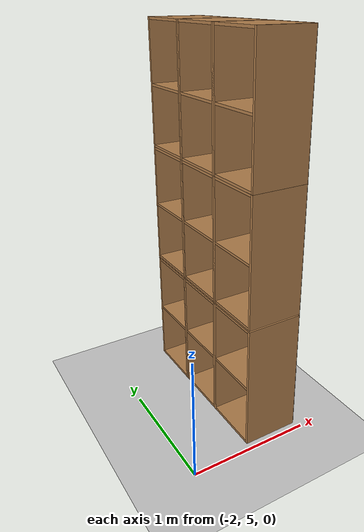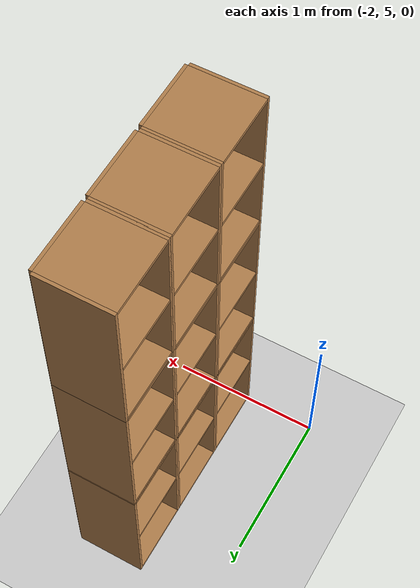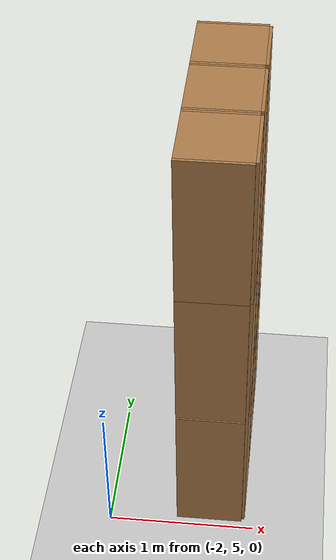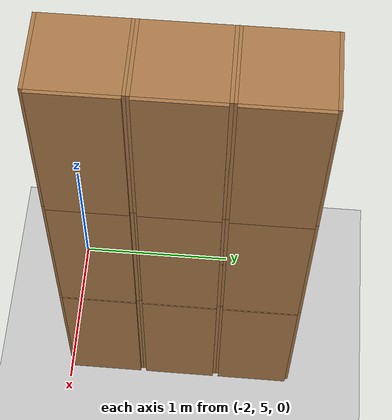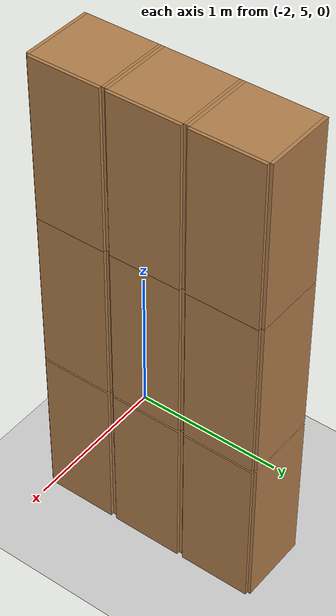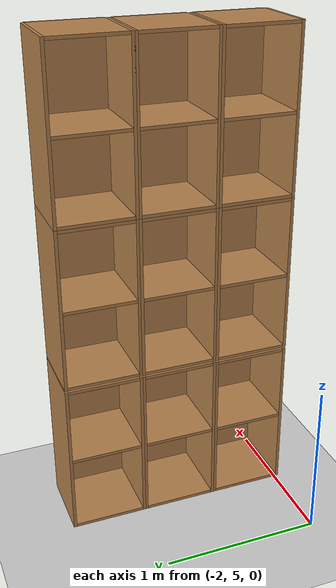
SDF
<sdf version="1.6">
 <world name="default">
  <model name="ground_plane">
   <static>1</static>
   <link name="link">
    <collision name="collision">
     <geometry><plane><normal>0 0 1</normal><size>100 100</size></plane></geometry>
     <surface>
      <contact><collide_bitmask>65535</collide_bitmask></contact>
      <friction><ode><mu>100</mu><mu2>50</mu2></ode></friction>
     </surface>
    </collision>
    <visual name="visual">
     <cast_shadows>0</cast_shadows>
     <geometry><plane><normal>0 0 1</normal><size>100 100</size></plane></geometry>
     <material>
      <script><uri>file://media/materials/scripts/gazebo.material</uri><name>Gazebo/Grey</name></script>
     </material>
    </visual>
   </link>
  </model>
  <model name="Locker18_clone_4_clone_2_clone_2_clone">
   <model name="Locker18">
    <model name="Locker3">
     <model name="cabinet">
      <static>1</static>
      <link name="cabinet_bottom_plate">
       <inertial>
        <pose>0 0 -1 0 -0 0</pose>
        <inertia><ixx>2.05</ixx><ixy>0</ixy><ixz>0</ixz><iyy>2.05</iyy><iyz>0</iyz><izz>2.05</izz></inertia>
        <mass>25</mass>
       </inertial>
       <collision name="cabinet_bottom_plate_geom">
        <pose>0 0 0.01 0 -0 0</pose>
        <geometry><box><size>0.45 0.45 0.02</size></box></geometry>
       </collision>
       <visual name="cabinet_bottom_plate_geom_visual">
        <pose>0 0 0.01 0 -0 0</pose>
        <geometry><box><size>0.45 0.45 0.02</size></box></geometry>
        <material>
         <script><uri>file://media/materials/scripts/gazebo.material</uri><name>Gazebo/Wood</name></script>
        </material>
       </visual>
       <collision name="cabinet_bottom_plate_geom_cabinet_back_plate">
        <pose>0.235 0 0.51 0 -0 0</pose>
        <geometry><box><size>0.02 0.45 1.02</size></box></geometry>
       </collision>
       <visual name="cabinet_bottom_plate_geom_cabinet_back_plate_visual">
        <pose>0.235 0 0.51 0 -0 0</pose>
        <geometry><box><size>0.02 0.45 1.02</size></box></geometry>
        <material>
         <script><uri>file://media/materials/scripts/gazebo.material</uri><name>Gazebo/Wood</name></script>
        </material>
       </visual>
       <collision name="cabinet_bottom_plate_geom_cabinet_left_plate">
        <pose>0 0.235 0.51 0 -0 0</pose>
        <geometry><box><size>0.45 0.02 1.02</size></box></geometry>
       </collision>
       <visual name="cabinet_bottom_plate_geom_cabinet_left_plate_visual">
        <pose>0 0.235 0.51 0 -0 0</pose>
        <geometry><box><size>0.45 0.02 1.02</size></box></geometry>
        <material>
         <script><uri>file://media/materials/scripts/gazebo.material</uri><name>Gazebo/Wood</name></script>
        </material>
       </visual>
       <collision name="cabinet_bottom_plate_geom_cabinet_middle_plate">
        <pose>0 0 0.51 0 -0 0</pose>
        <geometry><box><size>0.45 0.45 0.02</size></box></geometry>
       </collision>
       <visual name="cabinet_bottom_plate_geom_cabinet_middle_plate_visual">
        <pose>0 0 0.51 0 -0 0</pose>
        <geometry><box><size>0.45 0.45 0.02</size></box></geometry>
        <material>
         <script><uri>file://media/materials/scripts/gazebo.material</uri><name>Gazebo/Wood</name></script>
        </material>
       </visual>
       <collision name="cabinet_bottom_plate_geom_cabinet_right_plate">
        <pose>0 -0.235 0.51 0 -0 0</pose>
        <geometry><box><size>0.45 0.02 1.02</size></box></geometry>
       </collision>
       <visual name="cabinet_bottom_plate_geom_cabinet_right_plate_visual">
        <pose>0 -0.235 0.51 0 -0 0</pose>
        <geometry><box><size>0.45 0.02 1.02</size></box></geometry>
        <material>
         <script><uri>file://media/materials/scripts/gazebo.material</uri><name>Gazebo/Wood</name></script>
        </material>
       </visual>
       <collision name="cabinet_bottom_plate_geom_cabinet_top_plate">
        <pose>0 0 1.01 0 -0 0</pose>
        <geometry><box><size>0.45 0.45 0.02</size></box></geometry>
       </collision>
       <visual name="cabinet_bottom_plate_geom_cabinet_top_plate_visual">
        <pose>0 0 1.01 0 -0 0</pose>
        <geometry><box><size>0.45 0.45 0.02</size></box></geometry>
        <material>
         <script><uri>file://media/materials/scripts/gazebo.material</uri><name>Gazebo/Wood</name></script>
        </material>
       </visual>
      </link>
      <pose>-0.676968 1.45758 0 0 -0 0</pose>
     </model>
     <model name="cabinet_clone">
      <static>1</static>
      <link name="cabinet_bottom_plate">
       <inertial>
        <pose>0 0 -1 0 -0 0</pose>
        <inertia><ixx>2.05</ixx><ixy>0</ixy><ixz>0</ixz><iyy>2.05</iyy><iyz>0</iyz><izz>2.05</izz></inertia>
        <mass>25</mass>
       </inertial>
       <collision name="cabinet_bottom_plate_geom">
        <pose>0 0 0.01 0 -0 0</pose>
        <geometry><box><size>0.45 0.45 0.02</size></box></geometry>
       </collision>
       <visual name="cabinet_bottom_plate_geom_visual">
        <pose>0 0 0.01 0 -0 0</pose>
        <geometry><box><size>0.45 0.45 0.02</size></box></geometry>
        <material>
         <script><uri>file://media/materials/scripts/gazebo.material</uri><name>Gazebo/Wood</name></script>
        </material>
       </visual>
       <collision name="cabinet_bottom_plate_geom_cabinet_back_plate">
        <pose>0.235 0 0.51 0 -0 0</pose>
        <geometry><box><size>0.02 0.45 1.02</size></box></geometry>
       </collision>
       <visual name="cabinet_bottom_plate_geom_cabinet_back_plate_visual">
        <pose>0.235 0 0.51 0 -0 0</pose>
        <geometry><box><size>0.02 0.45 1.02</size></box></geometry>
        <material>
         <script><uri>file://media/materials/scripts/gazebo.material</uri><name>Gazebo/Wood</name></script>
        </material>
       </visual>
       <collision name="cabinet_bottom_plate_geom_cabinet_left_plate">
        <pose>0 0.235 0.51 0 -0 0</pose>
        <geometry><box><size>0.45 0.02 1.02</size></box></geometry>
       </collision>
       <visual name="cabinet_bottom_plate_geom_cabinet_left_plate_visual">
        <pose>0 0.235 0.51 0 -0 0</pose>
        <geometry><box><size>0.45 0.02 1.02</size></box></geometry>
        <material>
         <script><uri>file://media/materials/scripts/gazebo.material</uri><name>Gazebo/Wood</name></script>
        </material>
       </visual>
       <collision name="cabinet_bottom_plate_geom_cabinet_middle_plate">
        <pose>0 0 0.51 0 -0 0</pose>
        <geometry><box><size>0.45 0.45 0.02</size></box></geometry>
       </collision>
       <visual name="cabinet_bottom_plate_geom_cabinet_middle_plate_visual">
        <pose>0 0 0.51 0 -0 0</pose>
        <geometry><box><size>0.45 0.45 0.02</size></box></geometry>
        <material>
         <script><uri>file://media/materials/scripts/gazebo.material</uri><name>Gazebo/Wood</name></script>
        </material>
       </visual>
       <collision name="cabinet_bottom_plate_geom_cabinet_right_plate">
        <pose>0 -0.235 0.51 0 -0 0</pose>
        <geometry><box><size>0.45 0.02 1.02</size></box></geometry>
       </collision>
       <visual name="cabinet_bottom_plate_geom_cabinet_right_plate_visual">
        <pose>0 -0.235 0.51 0 -0 0</pose>
        <geometry><box><size>0.45 0.02 1.02</size></box></geometry>
        <material>
         <script><uri>file://media/materials/scripts/gazebo.material</uri><name>Gazebo/Wood</name></script>
        </material>
       </visual>
       <collision name="cabinet_bottom_plate_geom_cabinet_top_plate">
        <pose>0 0 1.01 0 -0 0</pose>
        <geometry><box><size>0.45 0.45 0.02</size></box></geometry>
       </collision>
       <visual name="cabinet_bottom_plate_geom_cabinet_top_plate_visual">
        <pose>0 0 1.01 0 -0 0</pose>
        <geometry><box><size>0.45 0.45 0.02</size></box></geometry>
        <material>
         <script><uri>file://media/materials/scripts/gazebo.material</uri><name>Gazebo/Wood</name></script>
        </material>
       </visual>
      </link>
      <pose>-0.676968 0.970971 0 0 -0 0</pose>
     </model>
     <model name="cabinet_clone_0">
      <static>1</static>
      <link name="cabinet_bottom_plate">
       <inertial>
        <pose>0 0 -1 0 -0 0</pose>
        <inertia><ixx>2.05</ixx><ixy>0</ixy><ixz>0</ixz><iyy>2.05</iyy><iyz>0</iyz><izz>2.05</izz></inertia>
        <mass>25</mass>
       </inertial>
       <collision name="cabinet_bottom_plate_geom">
        <pose>0 0 0.01 0 -0 0</pose>
        <geometry><box><size>0.45 0.45 0.02</size></box></geometry>
       </collision>
       <visual name="cabinet_bottom_plate_geom_visual">
        <pose>0 0 0.01 0 -0 0</pose>
        <geometry><box><size>0.45 0.45 0.02</size></box></geometry>
        <material>
         <script><uri>file://media/materials/scripts/gazebo.material</uri><name>Gazebo/Wood</name></script>
        </material>
       </visual>
       <collision name="cabinet_bottom_plate_geom_cabinet_back_plate">
        <pose>0.235 0 0.51 0 -0 0</pose>
        <geometry><box><size>0.02 0.45 1.02</size></box></geometry>
       </collision>
       <visual name="cabinet_bottom_plate_geom_cabinet_back_plate_visual">
        <pose>0.235 0 0.51 0 -0 0</pose>
        <geometry><box><size>0.02 0.45 1.02</size></box></geometry>
        <material>
         <script><uri>file://media/materials/scripts/gazebo.material</uri><name>Gazebo/Wood</name></script>
        </material>
       </visual>
       <collision name="cabinet_bottom_plate_geom_cabinet_left_plate">
        <pose>0 0.235 0.51 0 -0 0</pose>
        <geometry><box><size>0.45 0.02 1.02</size></box></geometry>
       </collision>
       <visual name="cabinet_bottom_plate_geom_cabinet_left_plate_visual">
        <pose>0 0.235 0.51 0 -0 0</pose>
        <geometry><box><size>0.45 0.02 1.02</size></box></geometry>
        <material>
         <script><uri>file://media/materials/scripts/gazebo.material</uri><name>Gazebo/Wood</name></script>
        </material>
       </visual>
       <collision name="cabinet_bottom_plate_geom_cabinet_middle_plate">
        <pose>0 0 0.51 0 -0 0</pose>
        <geometry><box><size>0.45 0.45 0.02</size></box></geometry>
       </collision>
       <visual name="cabinet_bottom_plate_geom_cabinet_middle_plate_visual">
        <pose>0 0 0.51 0 -0 0</pose>
        <geometry><box><size>0.45 0.45 0.02</size></box></geometry>
        <material>
         <script><uri>file://media/materials/scripts/gazebo.material</uri><name>Gazebo/Wood</name></script>
        </material>
       </visual>
       <collision name="cabinet_bottom_plate_geom_cabinet_right_plate">
        <pose>0 -0.235 0.51 0 -0 0</pose>
        <geometry><box><size>0.45 0.02 1.02</size></box></geometry>
       </collision>
       <visual name="cabinet_bottom_plate_geom_cabinet_right_plate_visual">
        <pose>0 -0.235 0.51 0 -0 0</pose>
        <geometry><box><size>0.45 0.02 1.02</size></box></geometry>
        <material>
         <script><uri>file://media/materials/scripts/gazebo.material</uri><name>Gazebo/Wood</name></script>
        </material>
       </visual>
       <collision name="cabinet_bottom_plate_geom_cabinet_top_plate">
        <pose>0 0 1.01 0 -0 0</pose>
        <geometry><box><size>0.45 0.45 0.02</size></box></geometry>
       </collision>
       <visual name="cabinet_bottom_plate_geom_cabinet_top_plate_visual">
        <pose>0 0 1.01 0 -0 0</pose>
        <geometry><box><size>0.45 0.45 0.02</size></box></geometry>
        <material>
         <script><uri>file://media/materials/scripts/gazebo.material</uri><name>Gazebo/Wood</name></script>
        </material>
       </visual>
      </link>
      <pose>-0.676968 0.48391 0 0 -0 0</pose>
     </model>
     <static>0</static>
     <pose>0 3e-06 -1.02763 0 -0 0</pose>
    </model>
    <model name="Locker3_clone">
     <model name="cabinet">
      <static>1</static>
      <link name="cabinet_bottom_plate">
       <inertial>
        <pose>0 0 -1 0 -0 0</pose>
        <inertia><ixx>2.05</ixx><ixy>0</ixy><ixz>0</ixz><iyy>2.05</iyy><iyz>0</iyz><izz>2.05</izz></inertia>
        <mass>25</mass>
       </inertial>
       <collision name="cabinet_bottom_plate_geom">
        <pose>0 0 0.01 0 -0 0</pose>
        <geometry><box><size>0.45 0.45 0.02</size></box></geometry>
       </collision>
       <visual name="cabinet_bottom_plate_geom_visual">
        <pose>0 0 0.01 0 -0 0</pose>
        <geometry><box><size>0.45 0.45 0.02</size></box></geometry>
        <material>
         <script><uri>file://media/materials/scripts/gazebo.material</uri><name>Gazebo/Wood</name></script>
        </material>
       </visual>
       <collision name="cabinet_bottom_plate_geom_cabinet_back_plate">
        <pose>0.235 0 0.51 0 -0 0</pose>
        <geometry><box><size>0.02 0.45 1.02</size></box></geometry>
       </collision>
       <visual name="cabinet_bottom_plate_geom_cabinet_back_plate_visual">
        <pose>0.235 0 0.51 0 -0 0</pose>
        <geometry><box><size>0.02 0.45 1.02</size></box></geometry>
        <material>
         <script><uri>file://media/materials/scripts/gazebo.material</uri><name>Gazebo/Wood</name></script>
        </material>
       </visual>
       <collision name="cabinet_bottom_plate_geom_cabinet_left_plate">
        <pose>0 0.235 0.51 0 -0 0</pose>
        <geometry><box><size>0.45 0.02 1.02</size></box></geometry>
       </collision>
       <visual name="cabinet_bottom_plate_geom_cabinet_left_plate_visual">
        <pose>0 0.235 0.51 0 -0 0</pose>
        <geometry><box><size>0.45 0.02 1.02</size></box></geometry>
        <material>
         <script><uri>file://media/materials/scripts/gazebo.material</uri><name>Gazebo/Wood</name></script>
        </material>
       </visual>
       <collision name="cabinet_bottom_plate_geom_cabinet_middle_plate">
        <pose>0 0 0.51 0 -0 0</pose>
        <geometry><box><size>0.45 0.45 0.02</size></box></geometry>
       </collision>
       <visual name="cabinet_bottom_plate_geom_cabinet_middle_plate_visual">
        <pose>0 0 0.51 0 -0 0</pose>
        <geometry><box><size>0.45 0.45 0.02</size></box></geometry>
        <material>
         <script><uri>file://media/materials/scripts/gazebo.material</uri><name>Gazebo/Wood</name></script>
        </material>
       </visual>
       <collision name="cabinet_bottom_plate_geom_cabinet_right_plate">
        <pose>0 -0.235 0.51 0 -0 0</pose>
        <geometry><box><size>0.45 0.02 1.02</size></box></geometry>
       </collision>
       <visual name="cabinet_bottom_plate_geom_cabinet_right_plate_visual">
        <pose>0 -0.235 0.51 0 -0 0</pose>
        <geometry><box><size>0.45 0.02 1.02</size></box></geometry>
        <material>
         <script><uri>file://media/materials/scripts/gazebo.material</uri><name>Gazebo/Wood</name></script>
        </material>
       </visual>
       <collision name="cabinet_bottom_plate_geom_cabinet_top_plate">
        <pose>0 0 1.01 0 -0 0</pose>
        <geometry><box><size>0.45 0.45 0.02</size></box></geometry>
       </collision>
       <visual name="cabinet_bottom_plate_geom_cabinet_top_plate_visual">
        <pose>0 0 1.01 0 -0 0</pose>
        <geometry><box><size>0.45 0.45 0.02</size></box></geometry>
        <material>
         <script><uri>file://media/materials/scripts/gazebo.material</uri><name>Gazebo/Wood</name></script>
        </material>
       </visual>
      </link>
      <pose>-0.676968 1.45758 0 0 -0 0</pose>
     </model>
     <model name="cabinet_clone">
      <static>1</static>
      <link name="cabinet_bottom_plate">
       <inertial>
        <pose>0 0 -1 0 -0 0</pose>
        <inertia><ixx>2.05</ixx><ixy>0</ixy><ixz>0</ixz><iyy>2.05</iyy><iyz>0</iyz><izz>2.05</izz></inertia>
        <mass>25</mass>
       </inertial>
       <collision name="cabinet_bottom_plate_geom">
        <pose>0 0 0.01 0 -0 0</pose>
        <geometry><box><size>0.45 0.45 0.02</size></box></geometry>
       </collision>
       <visual name="cabinet_bottom_plate_geom_visual">
        <pose>0 0 0.01 0 -0 0</pose>
        <geometry><box><size>0.45 0.45 0.02</size></box></geometry>
        <material>
         <script><uri>file://media/materials/scripts/gazebo.material</uri><name>Gazebo/Wood</name></script>
        </material>
       </visual>
       <collision name="cabinet_bottom_plate_geom_cabinet_back_plate">
        <pose>0.235 0 0.51 0 -0 0</pose>
        <geometry><box><size>0.02 0.45 1.02</size></box></geometry>
       </collision>
       <visual name="cabinet_bottom_plate_geom_cabinet_back_plate_visual">
        <pose>0.235 0 0.51 0 -0 0</pose>
        <geometry><box><size>0.02 0.45 1.02</size></box></geometry>
        <material>
         <script><uri>file://media/materials/scripts/gazebo.material</uri><name>Gazebo/Wood</name></script>
        </material>
       </visual>
       <collision name="cabinet_bottom_plate_geom_cabinet_left_plate">
        <pose>0 0.235 0.51 0 -0 0</pose>
        <geometry><box><size>0.45 0.02 1.02</size></box></geometry>
       </collision>
       <visual name="cabinet_bottom_plate_geom_cabinet_left_plate_visual">
        <pose>0 0.235 0.51 0 -0 0</pose>
        <geometry><box><size>0.45 0.02 1.02</size></box></geometry>
        <material>
         <script><uri>file://media/materials/scripts/gazebo.material</uri><name>Gazebo/Wood</name></script>
        </material>
       </visual>
       <collision name="cabinet_bottom_plate_geom_cabinet_middle_plate">
        <pose>0 0 0.51 0 -0 0</pose>
        <geometry><box><size>0.45 0.45 0.02</size></box></geometry>
       </collision>
       <visual name="cabinet_bottom_plate_geom_cabinet_middle_plate_visual">
        <pose>0 0 0.51 0 -0 0</pose>
        <geometry><box><size>0.45 0.45 0.02</size></box></geometry>
        <material>
         <script><uri>file://media/materials/scripts/gazebo.material</uri><name>Gazebo/Wood</name></script>
        </material>
       </visual>
       <collision name="cabinet_bottom_plate_geom_cabinet_right_plate">
        <pose>0 -0.235 0.51 0 -0 0</pose>
        <geometry><box><size>0.45 0.02 1.02</size></box></geometry>
       </collision>
       <visual name="cabinet_bottom_plate_geom_cabinet_right_plate_visual">
        <pose>0 -0.235 0.51 0 -0 0</pose>
        <geometry><box><size>0.45 0.02 1.02</size></box></geometry>
        <material>
         <script><uri>file://media/materials/scripts/gazebo.material</uri><name>Gazebo/Wood</name></script>
        </material>
       </visual>
       <collision name="cabinet_bottom_plate_geom_cabinet_top_plate">
        <pose>0 0 1.01 0 -0 0</pose>
        <geometry><box><size>0.45 0.45 0.02</size></box></geometry>
       </collision>
       <visual name="cabinet_bottom_plate_geom_cabinet_top_plate_visual">
        <pose>0 0 1.01 0 -0 0</pose>
        <geometry><box><size>0.45 0.45 0.02</size></box></geometry>
        <material>
         <script><uri>file://media/materials/scripts/gazebo.material</uri><name>Gazebo/Wood</name></script>
        </material>
       </visual>
      </link>
      <pose>-0.676968 0.970971 0 0 -0 0</pose>
     </model>
     <model name="cabinet_clone_0">
      <static>1</static>
      <link name="cabinet_bottom_plate">
       <inertial>
        <pose>0 0 -1 0 -0 0</pose>
        <inertia><ixx>2.05</ixx><ixy>0</ixy><ixz>0</ixz><iyy>2.05</iyy><iyz>0</iyz><izz>2.05</izz></inertia>
        <mass>25</mass>
       </inertial>
       <collision name="cabinet_bottom_plate_geom">
        <pose>0 0 0.01 0 -0 0</pose>
        <geometry><box><size>0.45 0.45 0.02</size></box></geometry>
       </collision>
       <visual name="cabinet_bottom_plate_geom_visual">
        <pose>0 0 0.01 0 -0 0</pose>
        <geometry><box><size>0.45 0.45 0.02</size></box></geometry>
        <material>
         <script><uri>file://media/materials/scripts/gazebo.material</uri><name>Gazebo/Wood</name></script>
        </material>
       </visual>
       <collision name="cabinet_bottom_plate_geom_cabinet_back_plate">
        <pose>0.235 0 0.51 0 -0 0</pose>
        <geometry><box><size>0.02 0.45 1.02</size></box></geometry>
       </collision>
       <visual name="cabinet_bottom_plate_geom_cabinet_back_plate_visual">
        <pose>0.235 0 0.51 0 -0 0</pose>
        <geometry><box><size>0.02 0.45 1.02</size></box></geometry>
        <material>
         <script><uri>file://media/materials/scripts/gazebo.material</uri><name>Gazebo/Wood</name></script>
        </material>
       </visual>
       <collision name="cabinet_bottom_plate_geom_cabinet_left_plate">
        <pose>0 0.235 0.51 0 -0 0</pose>
        <geometry><box><size>0.45 0.02 1.02</size></box></geometry>
       </collision>
       <visual name="cabinet_bottom_plate_geom_cabinet_left_plate_visual">
        <pose>0 0.235 0.51 0 -0 0</pose>
        <geometry><box><size>0.45 0.02 1.02</size></box></geometry>
        <material>
         <script><uri>file://media/materials/scripts/gazebo.material</uri><name>Gazebo/Wood</name></script>
        </material>
       </visual>
       <collision name="cabinet_bottom_plate_geom_cabinet_middle_plate">
        <pose>0 0 0.51 0 -0 0</pose>
        <geometry><box><size>0.45 0.45 0.02</size></box></geometry>
       </collision>
       <visual name="cabinet_bottom_plate_geom_cabinet_middle_plate_visual">
        <pose>0 0 0.51 0 -0 0</pose>
        <geometry><box><size>0.45 0.45 0.02</size></box></geometry>
        <material>
         <script><uri>file://media/materials/scripts/gazebo.material</uri><name>Gazebo/Wood</name></script>
        </material>
       </visual>
       <collision name="cabinet_bottom_plate_geom_cabinet_right_plate">
        <pose>0 -0.235 0.51 0 -0 0</pose>
        <geometry><box><size>0.45 0.02 1.02</size></box></geometry>
       </collision>
       <visual name="cabinet_bottom_plate_geom_cabinet_right_plate_visual">
        <pose>0 -0.235 0.51 0 -0 0</pose>
        <geometry><box><size>0.45 0.02 1.02</size></box></geometry>
        <material>
         <script><uri>file://media/materials/scripts/gazebo.material</uri><name>Gazebo/Wood</name></script>
        </material>
       </visual>
       <collision name="cabinet_bottom_plate_geom_cabinet_top_plate">
        <pose>0 0 1.01 0 -0 0</pose>
        <geometry><box><size>0.45 0.45 0.02</size></box></geometry>
       </collision>
       <visual name="cabinet_bottom_plate_geom_cabinet_top_plate_visual">
        <pose>0 0 1.01 0 -0 0</pose>
        <geometry><box><size>0.45 0.45 0.02</size></box></geometry>
        <material>
         <script><uri>file://media/materials/scripts/gazebo.material</uri><name>Gazebo/Wood</name></script>
        </material>
       </visual>
      </link>
      <pose>-0.676968 0.48391 0 0 -0 0</pose>
     </model>
     <static>0</static>
     <pose>0 3e-06 0.003717 0 -0 0</pose>
    </model>
    <model name="Locker3_clone_clone">
     <model name="cabinet">
      <static>1</static>
      <link name="cabinet_bottom_plate">
       <inertial>
        <pose>0 0 -1 0 -0 0</pose>
        <inertia><ixx>2.05</ixx><ixy>0</ixy><ixz>0</ixz><iyy>2.05</iyy><iyz>0</iyz><izz>2.05</izz></inertia>
        <mass>25</mass>
       </inertial>
       <collision name="cabinet_bottom_plate_geom">
        <pose>0 0 0.01 0 -0 0</pose>
        <geometry><box><size>0.45 0.45 0.02</size></box></geometry>
       </collision>
       <visual name="cabinet_bottom_plate_geom_visual">
        <pose>0 0 0.01 0 -0 0</pose>
        <geometry><box><size>0.45 0.45 0.02</size></box></geometry>
        <material>
         <script><uri>file://media/materials/scripts/gazebo.material</uri><name>Gazebo/Wood</name></script>
        </material>
       </visual>
       <collision name="cabinet_bottom_plate_geom_cabinet_back_plate">
        <pose>0.235 0 0.51 0 -0 0</pose>
        <geometry><box><size>0.02 0.45 1.02</size></box></geometry>
       </collision>
       <visual name="cabinet_bottom_plate_geom_cabinet_back_plate_visual">
        <pose>0.235 0 0.51 0 -0 0</pose>
        <geometry><box><size>0.02 0.45 1.02</size></box></geometry>
        <material>
         <script><uri>file://media/materials/scripts/gazebo.material</uri><name>Gazebo/Wood</name></script>
        </material>
       </visual>
       <collision name="cabinet_bottom_plate_geom_cabinet_left_plate">
        <pose>0 0.235 0.51 0 -0 0</pose>
        <geometry><box><size>0.45 0.02 1.02</size></box></geometry>
       </collision>
       <visual name="cabinet_bottom_plate_geom_cabinet_left_plate_visual">
        <pose>0 0.235 0.51 0 -0 0</pose>
        <geometry><box><size>0.45 0.02 1.02</size></box></geometry>
        <material>
         <script><uri>file://media/materials/scripts/gazebo.material</uri><name>Gazebo/Wood</name></script>
        </material>
       </visual>
       <collision name="cabinet_bottom_plate_geom_cabinet_middle_plate">
        <pose>0 0 0.51 0 -0 0</pose>
        <geometry><box><size>0.45 0.45 0.02</size></box></geometry>
       </collision>
       <visual name="cabinet_bottom_plate_geom_cabinet_middle_plate_visual">
        <pose>0 0 0.51 0 -0 0</pose>
        <geometry><box><size>0.45 0.45 0.02</size></box></geometry>
        <material>
         <script><uri>file://media/materials/scripts/gazebo.material</uri><name>Gazebo/Wood</name></script>
        </material>
       </visual>
       <collision name="cabinet_bottom_plate_geom_cabinet_right_plate">
        <pose>0 -0.235 0.51 0 -0 0</pose>
        <geometry><box><size>0.45 0.02 1.02</size></box></geometry>
       </collision>
       <visual name="cabinet_bottom_plate_geom_cabinet_right_plate_visual">
        <pose>0 -0.235 0.51 0 -0 0</pose>
        <geometry><box><size>0.45 0.02 1.02</size></box></geometry>
        <material>
         <script><uri>file://media/materials/scripts/gazebo.material</uri><name>Gazebo/Wood</name></script>
        </material>
       </visual>
       <collision name="cabinet_bottom_plate_geom_cabinet_top_plate">
        <pose>0 0 1.01 0 -0 0</pose>
        <geometry><box><size>0.45 0.45 0.02</size></box></geometry>
       </collision>
       <visual name="cabinet_bottom_plate_geom_cabinet_top_plate_visual">
        <pose>0 0 1.01 0 -0 0</pose>
        <geometry><box><size>0.45 0.45 0.02</size></box></geometry>
        <material>
         <script><uri>file://media/materials/scripts/gazebo.material</uri><name>Gazebo/Wood</name></script>
        </material>
       </visual>
      </link>
      <pose>-0.676968 1.45758 0 0 -0 0</pose>
     </model>
     <model name="cabinet_clone">
      <static>1</static>
      <link name="cabinet_bottom_plate">
       <inertial>
        <pose>0 0 -1 0 -0 0</pose>
        <inertia><ixx>2.05</ixx><ixy>0</ixy><ixz>0</ixz><iyy>2.05</iyy><iyz>0</iyz><izz>2.05</izz></inertia>
        <mass>25</mass>
       </inertial>
       <collision name="cabinet_bottom_plate_geom">
        <pose>0 0 0.01 0 -0 0</pose>
        <geometry><box><size>0.45 0.45 0.02</size></box></geometry>
       </collision>
       <visual name="cabinet_bottom_plate_geom_visual">
        <pose>0 0 0.01 0 -0 0</pose>
        <geometry><box><size>0.45 0.45 0.02</size></box></geometry>
        <material>
         <script><uri>file://media/materials/scripts/gazebo.material</uri><name>Gazebo/Wood</name></script>
        </material>
       </visual>
       <collision name="cabinet_bottom_plate_geom_cabinet_back_plate">
        <pose>0.235 0 0.51 0 -0 0</pose>
        <geometry><box><size>0.02 0.45 1.02</size></box></geometry>
       </collision>
       <visual name="cabinet_bottom_plate_geom_cabinet_back_plate_visual">
        <pose>0.235 0 0.51 0 -0 0</pose>
        <geometry><box><size>0.02 0.45 1.02</size></box></geometry>
        <material>
         <script><uri>file://media/materials/scripts/gazebo.material</uri><name>Gazebo/Wood</name></script>
        </material>
       </visual>
       <collision name="cabinet_bottom_plate_geom_cabinet_left_plate">
        <pose>0 0.235 0.51 0 -0 0</pose>
        <geometry><box><size>0.45 0.02 1.02</size></box></geometry>
       </collision>
       <visual name="cabinet_bottom_plate_geom_cabinet_left_plate_visual">
        <pose>0 0.235 0.51 0 -0 0</pose>
        <geometry><box><size>0.45 0.02 1.02</size></box></geometry>
        <material>
         <script><uri>file://media/materials/scripts/gazebo.material</uri><name>Gazebo/Wood</name></script>
        </material>
       </visual>
       <collision name="cabinet_bottom_plate_geom_cabinet_middle_plate">
        <pose>0 0 0.51 0 -0 0</pose>
        <geometry><box><size>0.45 0.45 0.02</size></box></geometry>
       </collision>
       <visual name="cabinet_bottom_plate_geom_cabinet_middle_plate_visual">
        <pose>0 0 0.51 0 -0 0</pose>
        <geometry><box><size>0.45 0.45 0.02</size></box></geometry>
        <material>
         <script><uri>file://media/materials/scripts/gazebo.material</uri><name>Gazebo/Wood</name></script>
        </material>
       </visual>
       <collision name="cabinet_bottom_plate_geom_cabinet_right_plate">
        <pose>0 -0.235 0.51 0 -0 0</pose>
        <geometry><box><size>0.45 0.02 1.02</size></box></geometry>
       </collision>
       <visual name="cabinet_bottom_plate_geom_cabinet_right_plate_visual">
        <pose>0 -0.235 0.51 0 -0 0</pose>
        <geometry><box><size>0.45 0.02 1.02</size></box></geometry>
        <material>
         <script><uri>file://media/materials/scripts/gazebo.material</uri><name>Gazebo/Wood</name></script>
        </material>
       </visual>
       <collision name="cabinet_bottom_plate_geom_cabinet_top_plate">
        <pose>0 0 1.01 0 -0 0</pose>
        <geometry><box><size>0.45 0.45 0.02</size></box></geometry>
       </collision>
       <visual name="cabinet_bottom_plate_geom_cabinet_top_plate_visual">
        <pose>0 0 1.01 0 -0 0</pose>
        <geometry><box><size>0.45 0.45 0.02</size></box></geometry>
        <material>
         <script><uri>file://media/materials/scripts/gazebo.material</uri><name>Gazebo/Wood</name></script>
        </material>
       </visual>
      </link>
      <pose>-0.676968 0.970971 0 0 -0 0</pose>
     </model>
     <model name="cabinet_clone_0">
      <static>1</static>
      <link name="cabinet_bottom_plate">
       <inertial>
        <pose>0 0 -1 0 -0 0</pose>
        <inertia><ixx>2.05</ixx><ixy>0</ixy><ixz>0</ixz><iyy>2.05</iyy><iyz>0</iyz><izz>2.05</izz></inertia>
        <mass>25</mass>
       </inertial>
       <collision name="cabinet_bottom_plate_geom">
        <pose>0 0 0.01 0 -0 0</pose>
        <geometry><box><size>0.45 0.45 0.02</size></box></geometry>
       </collision>
       <visual name="cabinet_bottom_plate_geom_visual">
        <pose>0 0 0.01 0 -0 0</pose>
        <geometry><box><size>0.45 0.45 0.02</size></box></geometry>
        <material>
         <script><uri>file://media/materials/scripts/gazebo.material</uri><name>Gazebo/Wood</name></script>
        </material>
       </visual>
       <collision name="cabinet_bottom_plate_geom_cabinet_back_plate">
        <pose>0.235 0 0.51 0 -0 0</pose>
        <geometry><box><size>0.02 0.45 1.02</size></box></geometry>
       </collision>
       <visual name="cabinet_bottom_plate_geom_cabinet_back_plate_visual">
        <pose>0.235 0 0.51 0 -0 0</pose>
        <geometry><box><size>0.02 0.45 1.02</size></box></geometry>
        <material>
         <script><uri>file://media/materials/scripts/gazebo.material</uri><name>Gazebo/Wood</name></script>
        </material>
       </visual>
       <collision name="cabinet_bottom_plate_geom_cabinet_left_plate">
        <pose>0 0.235 0.51 0 -0 0</pose>
        <geometry><box><size>0.45 0.02 1.02</size></box></geometry>
       </collision>
       <visual name="cabinet_bottom_plate_geom_cabinet_left_plate_visual">
        <pose>0 0.235 0.51 0 -0 0</pose>
        <geometry><box><size>0.45 0.02 1.02</size></box></geometry>
        <material>
         <script><uri>file://media/materials/scripts/gazebo.material</uri><name>Gazebo/Wood</name></script>
        </material>
       </visual>
       <collision name="cabinet_bottom_plate_geom_cabinet_middle_plate">
        <pose>0 0 0.51 0 -0 0</pose>
        <geometry><box><size>0.45 0.45 0.02</size></box></geometry>
       </collision>
       <visual name="cabinet_bottom_plate_geom_cabinet_middle_plate_visual">
        <pose>0 0 0.51 0 -0 0</pose>
        <geometry><box><size>0.45 0.45 0.02</size></box></geometry>
        <material>
         <script><uri>file://media/materials/scripts/gazebo.material</uri><name>Gazebo/Wood</name></script>
        </material>
       </visual>
       <collision name="cabinet_bottom_plate_geom_cabinet_right_plate">
        <pose>0 -0.235 0.51 0 -0 0</pose>
        <geometry><box><size>0.45 0.02 1.02</size></box></geometry>
       </collision>
       <visual name="cabinet_bottom_plate_geom_cabinet_right_plate_visual">
        <pose>0 -0.235 0.51 0 -0 0</pose>
        <geometry><box><size>0.45 0.02 1.02</size></box></geometry>
        <material>
         <script><uri>file://media/materials/scripts/gazebo.material</uri><name>Gazebo/Wood</name></script>
        </material>
       </visual>
       <collision name="cabinet_bottom_plate_geom_cabinet_top_plate">
        <pose>0 0 1.01 0 -0 0</pose>
        <geometry><box><size>0.45 0.45 0.02</size></box></geometry>
       </collision>
       <visual name="cabinet_bottom_plate_geom_cabinet_top_plate_visual">
        <pose>0 0 1.01 0 -0 0</pose>
        <geometry><box><size>0.45 0.45 0.02</size></box></geometry>
        <material>
         <script><uri>file://media/materials/scripts/gazebo.material</uri><name>Gazebo/Wood</name></script>
        </material>
       </visual>
      </link>
      <pose>-0.676968 0.48391 0 0 -0 0</pose>
     </model>
     <static>0</static>
     <pose>0 3e-06 1.02391 0 -0 0</pose>
    </model>
    <static>0</static>
    <pose>-0 4e-06 4e-06 0 -0 0</pose>
   </model>
   <static>0</static>
   <pose>-0.627236 4.76968 1.08672 0 -0 0</pose>
  </model>
 </world>
</sdf>
